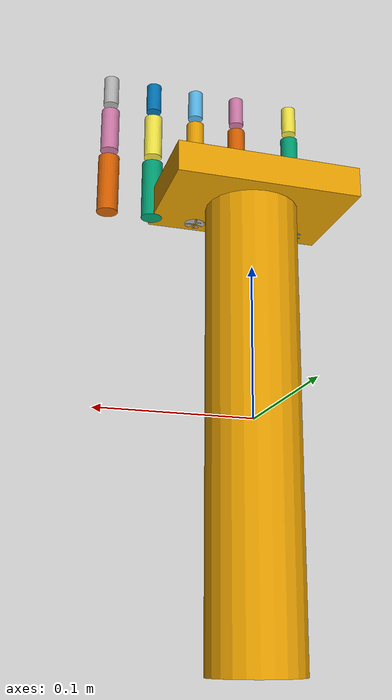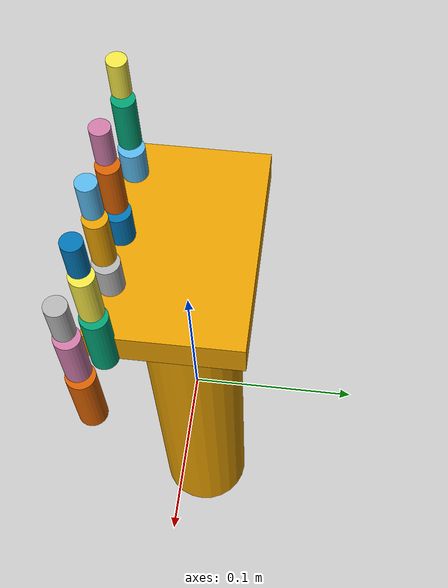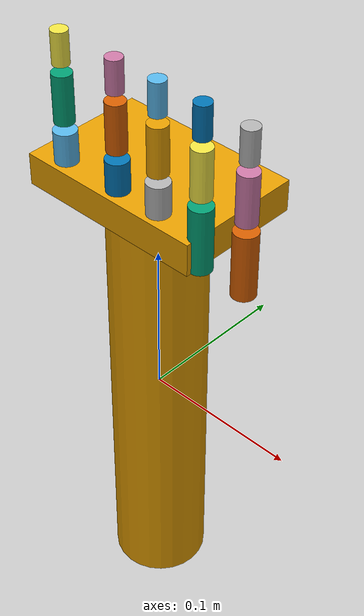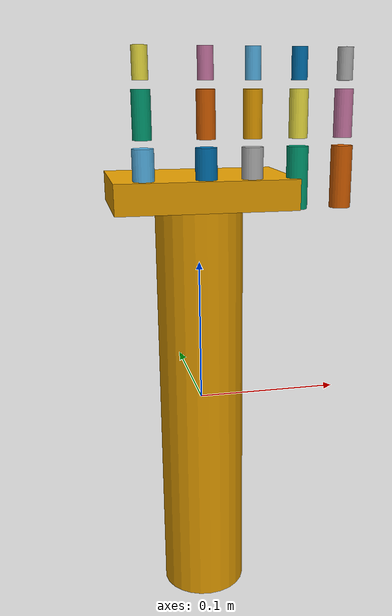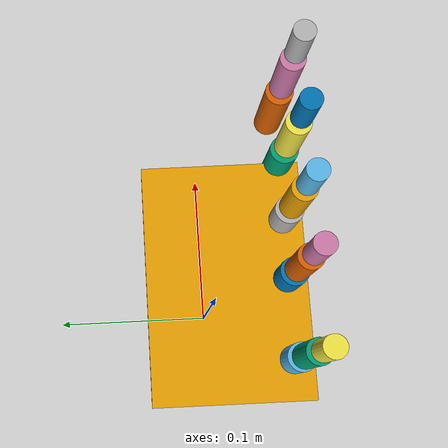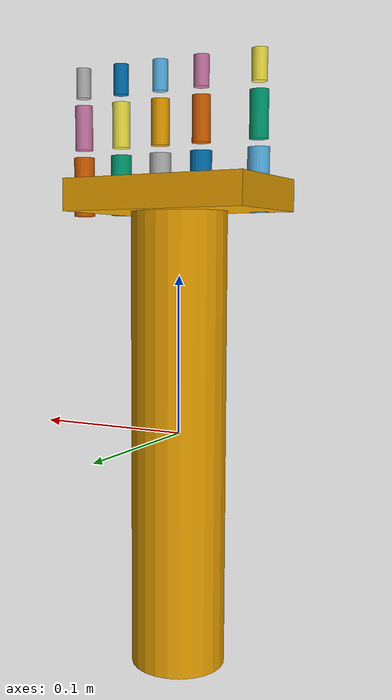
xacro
<?xml version="1.0"?>
<robot name="my_robot" xmlns:xacro="http://ros.org/wiki/xacro">

  <!-- Include the hand -->
  <xacro:include filename="$(find my_robot_description)/urdf/hands/five_finger_hand.urdf.xacro"/>

  <!-- ================= ARM ================= -->
  <link name="arm_link">
    <visual>
      <geometry>
        <cylinder length="0.3" radius="0.03"/>
      </geometry>
    </visual>
  </link>

  <!-- ================= WRIST ================= -->
  <joint name="wrist_joint" type="fixed">
    <parent link="arm_link"/>
    <child link="palm_link"/>
    <origin xyz="0 0 0.15"/>
  </joint>

</robot>

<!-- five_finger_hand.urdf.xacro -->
<robot xmlns:xacro="http://ros.org/wiki/xacro">

  <!-- ================= PALM ================= -->
  <link name="palm_link">
    <visual>
      <geometry>
        <box size="0.12 0.08 0.02"/>
      </geometry>
    </visual>
    <collision>
      <geometry>
        <box size="0.12 0.08 0.02"/>
      </geometry>
    </collision>
  </link>

  <!-- ============== FINGER MACRO ============== -->
  <xacro:macro name="finger" params="name x y">

    <!-- Proximal -->
    <link name="${name}_proximal">
      <visual>
        <geometry>
          <cylinder length="0.04" radius="0.007"/>
        </geometry>
      </visual>
    </link>

    <joint name="${name}_mcp" type="revolute">
      <parent link="palm_link"/>
      <child link="${name}_proximal"/>
      <origin xyz="${x} ${y} 0.01"/>
      <axis xyz="0 1 0"/>
      <limit lower="0" upper="1.5" effort="1" velocity="1"/>
    </joint>

    <!-- Middle -->
    <link name="${name}_middle">
      <visual>
        <geometry>
          <cylinder length="0.03" radius="0.006"/>
        </geometry>
      </visual>
    </link>

    <joint name="${name}_pip" type="revolute">
      <parent link="${name}_proximal"/>
      <child link="${name}_middle"/>
      <origin xyz="0 0 0.04"/>
      <axis xyz="0 1 0"/>
      <limit lower="0" upper="1.5"/>
    </joint>

    <!-- Distal -->
    <link name="${name}_distal">
      <visual>
        <geometry>
          <cylinder length="0.02" radius="0.005"/>
        </geometry>
      </visual>
    </link>

    <joint name="${name}_dip" type="revolute">
      <parent link="${name}_middle"/>
      <child link="${name}_distal"/>
      <origin xyz="0 0 0.03"/>
      <axis xyz="0 1 0"/>
      <limit lower="0" upper="1.5"/>
    </joint>

  </xacro:macro>

  <!-- ============== FIVE FINGERS ============== -->
  <finger name="thumb"  x="-0.04" y="-0.03"/>
  <finger name="index"  x="0.00"  y="-0.03"/>
  <finger name="middle" x="0.03"  y="-0.03"/>
  <finger name="ring"   x="0.06"  y="-0.03"/>
  <finger name="pinky"  x="0.09"  y="-0.03"/>

</robot>
